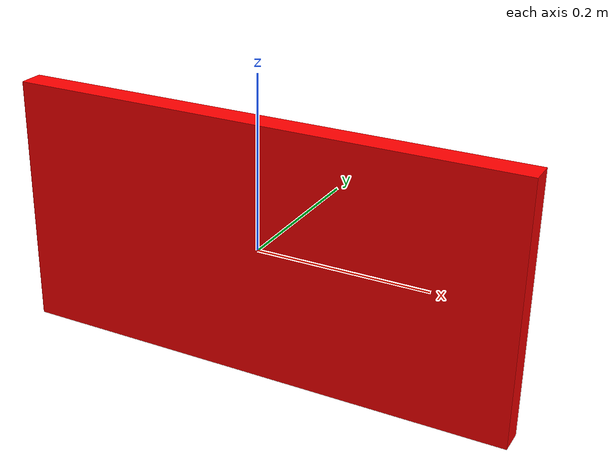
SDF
<?xml version="1.0"?>
<sdf version="1.6">
  <model name="bed_marker_red">

    <!-- 不受重力影響、不會倒 -->
    <static>true</static>

    <link name="panel_link">
      <!-- 牌子的寬、厚、高：自己調 -->
      <collision name="collision">
        <geometry>
          <box>
            <size>0.6 0.03 0.3</size>
          </box>
        </geometry>
      </collision>

      <visual name="visual">
        <geometry>
          <box>
            <size>0.6 0.03 0.3</size>
          </box>
        </geometry>
        <material>
          <!-- 顏色：純紅 -->
          <ambient>1 0 0 1</ambient>
          <diffuse>1 0 0 1</diffuse>
          <specular>0.1 0.1 0.1 1</specular>
          <emissive>0 0 0 1</emissive>
        </material>
      </visual>
    </link>
  </model>
</sdf>
